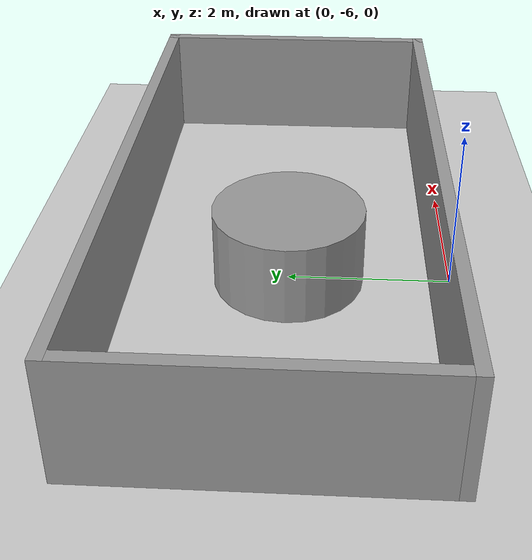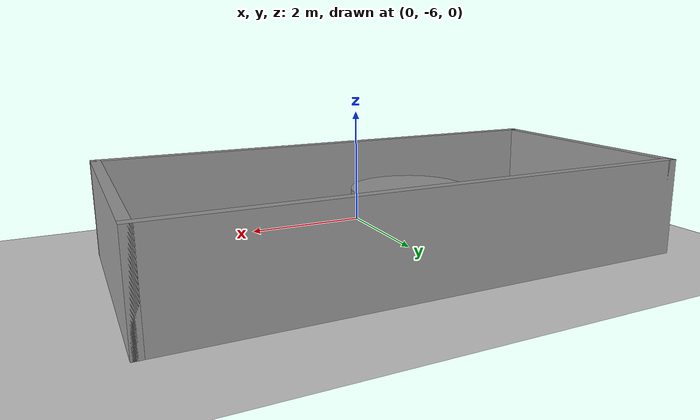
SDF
<sdf version="1.6">
 <world name="default">
  <light name="sun" type="directional">
   <pose>0 0 10 0 -0 0</pose>
   <diffuse>0.8 0.8 0.8 1</diffuse>
   <specular>0.1 0.1 0.1 1</specular>
   <attenuation>
    <range>1000</range>
    <constant>0.9</constant>
    <linear>0.01</linear>
    <quadratic>0.001</quadratic>
   </attenuation>
   <direction>-0.5 0.5 -1</direction>
  </light>
  <model name="ground_plane">
   <static>1</static>
   <link name="link">
    <collision name="collision">
     <geometry><plane><normal>0 0 1</normal><size>100 100</size></plane></geometry>
     <surface><friction><ode><mu>100</mu><mu2>50</mu2></ode></friction></surface>
    </collision>
    <visual name="visual">
     <cast_shadows>0</cast_shadows>
     <geometry><plane><normal>0 0 1</normal><size>100 100</size></plane></geometry>
     <material>
      <script><uri>file://media/materials/scripts/gazebo.material</uri><name>Gazebo/Grey</name></script>
     </material>
    </visual>
   </link>
  </model>
  <gravity>0 0 -9.8</gravity>
  <magnetic_field>6e-06 2.3e-05 -4.2e-05</magnetic_field>
  <atmosphere type="adiabatic"/>
  <physics name="default_physics" default="0" type="ode">
   <max_step_size>0.001</max_step_size>
   <real_time_factor>1</real_time_factor>
   <real_time_update_rate>1000</real_time_update_rate>
  </physics>
  <scene><ambient>0.4 0.4 0.4 1</ambient><background>0.7 0.7 0.7 1</background><shadows>1</shadows></scene>
  <spherical_coordinates>
   <surface_model>EARTH_WGS84</surface_model>
   <latitude_deg>0</latitude_deg>
   <longitude_deg>0</longitude_deg>
   <elevation>0</elevation>
   <heading_deg>0</heading_deg>
  </spherical_coordinates>
  <model name="arena_1">
   <pose>0.508 -3.893 0 0 -0 0</pose>
   <link name="Wall_1">
    <collision name="Wall_1_Collision">
     <geometry><box><size>8 0.15 1.5</size></box></geometry>
     <pose>0 0 0.75 0 -0 0</pose>
    </collision>
    <visual name="Wall_1_Visual">
     <pose>0 0 0.75 0 -0 0</pose>
     <geometry><box><size>8 0.15 1.5</size></box></geometry>
     <material>
      <script><uri>file://media/materials/scripts/gazebo.material</uri><name>Gazebo/Grey</name></script>
      <ambient>1 1 1 1</ambient>
     </material>
    </visual>
    <pose>0 1.925 0 0 -0 0</pose>
   </link>
   <link name="Wall_2">
    <collision name="Wall_2_Collision">
     <geometry><box><size>4 0.15 1.5</size></box></geometry>
     <pose>0 0 0.75 0 -0 0</pose>
    </collision>
    <visual name="Wall_2_Visual">
     <pose>0 0 0.75 0 -0 0</pose>
     <geometry><box><size>4 0.15 1.5</size></box></geometry>
     <material>
      <script><uri>file://media/materials/scripts/gazebo.material</uri><name>Gazebo/Grey</name></script>
      <ambient>1 1 1 1</ambient>
     </material>
    </visual>
    <pose>3.925 0 0 0 0 -1.5708</pose>
   </link>
   <link name="Wall_3">
    <collision name="Wall_3_Collision">
     <geometry><box><size>8 0.15 1.5</size></box></geometry>
     <pose>0 0 0.75 0 -0 0</pose>
    </collision>
    <visual name="Wall_3_Visual">
     <pose>0 0 0.75 0 -0 0</pose>
     <geometry><box><size>8 0.15 1.5</size></box></geometry>
     <material>
      <script><uri>file://media/materials/scripts/gazebo.material</uri><name>Gazebo/Grey</name></script>
      <ambient>1 1 1 1</ambient>
     </material>
    </visual>
    <pose>0 -1.925 0 0 -0 3.14159</pose>
   </link>
   <link name="Wall_4">
    <collision name="Wall_4_Collision">
     <geometry><box><size>4 0.15 1.5</size></box></geometry>
     <pose>0 0 0.75 0 -0 0</pose>
    </collision>
    <visual name="Wall_4_Visual">
     <pose>0 0 0.75 0 -0 0</pose>
     <geometry><box><size>4 0.15 1.5</size></box></geometry>
     <material>
      <script><uri>file://media/materials/scripts/gazebo.material</uri><name>Gazebo/Grey</name></script>
      <ambient>1 1 1 1</ambient>
     </material>
    </visual>
    <pose>-3.925 0 0 0 -0 1.5708</pose>
   </link>
   <static>1</static>
  </model>
  <model name="unit_cylinder_0">
   <pose>0 -4 0.5 0 -0 0</pose>
   <link name="link">
    <inertial>
     <mass>1</mass>
     <inertia><ixx>0.145833</ixx><ixy>0</ixy><ixz>0</ixz><iyy>0.145833</iyy><iyz>0</iyz><izz>0.125</izz></inertia>
    </inertial>
    <collision name="collision">
     <geometry><cylinder><radius>0.9314</radius><length>1</length></cylinder></geometry>
    </collision>
    <visual name="visual">
     <geometry><cylinder><radius>0.9314</radius><length>1</length></cylinder></geometry>
     <material>
      <script><name>Gazebo/Grey</name><uri>file://media/materials/scripts/gazebo.material</uri></script>
     </material>
    </visual>
   </link>
  </model>
 </world>
</sdf>
